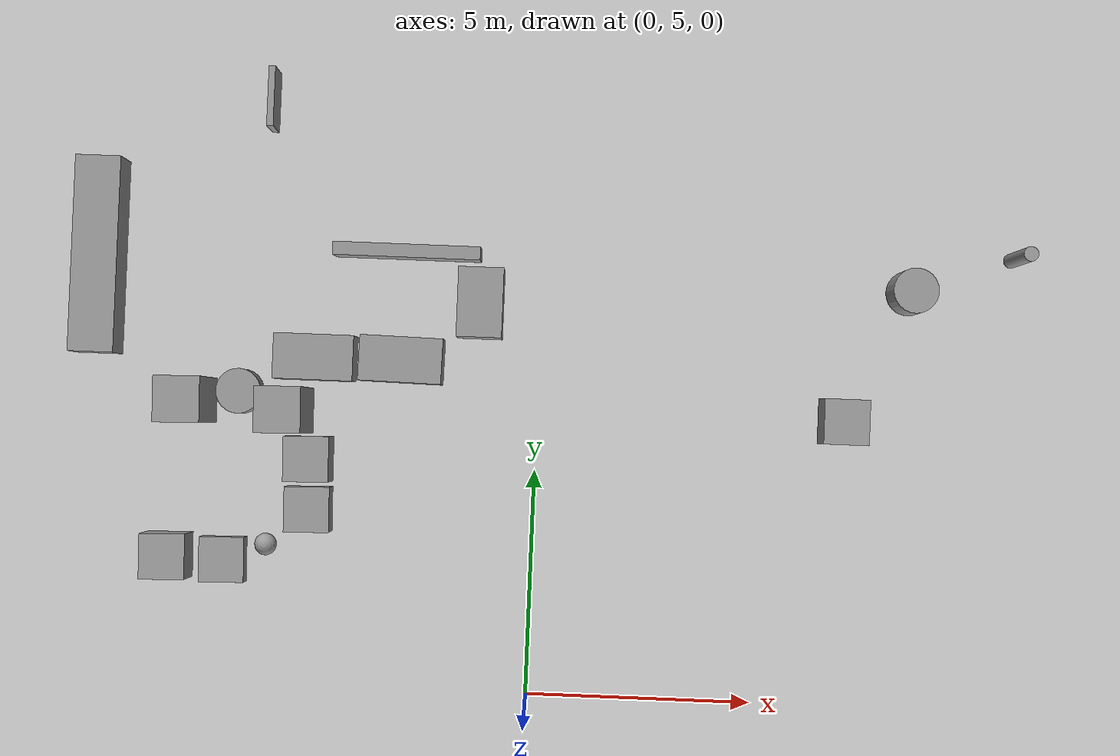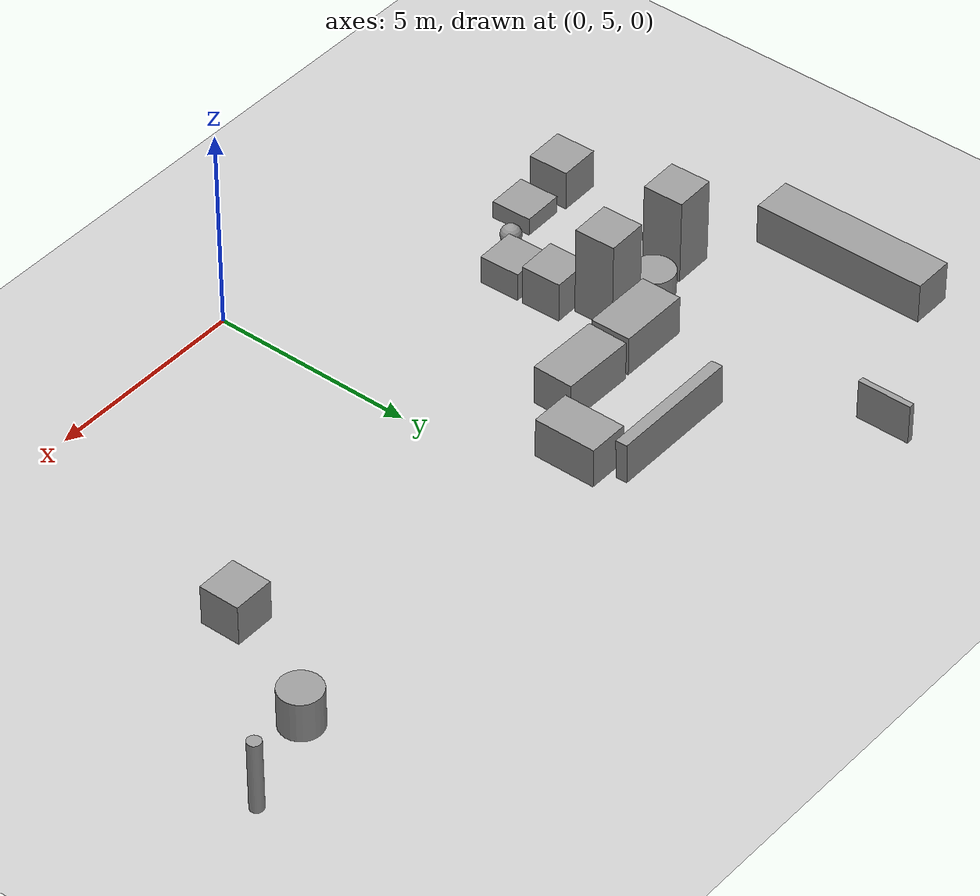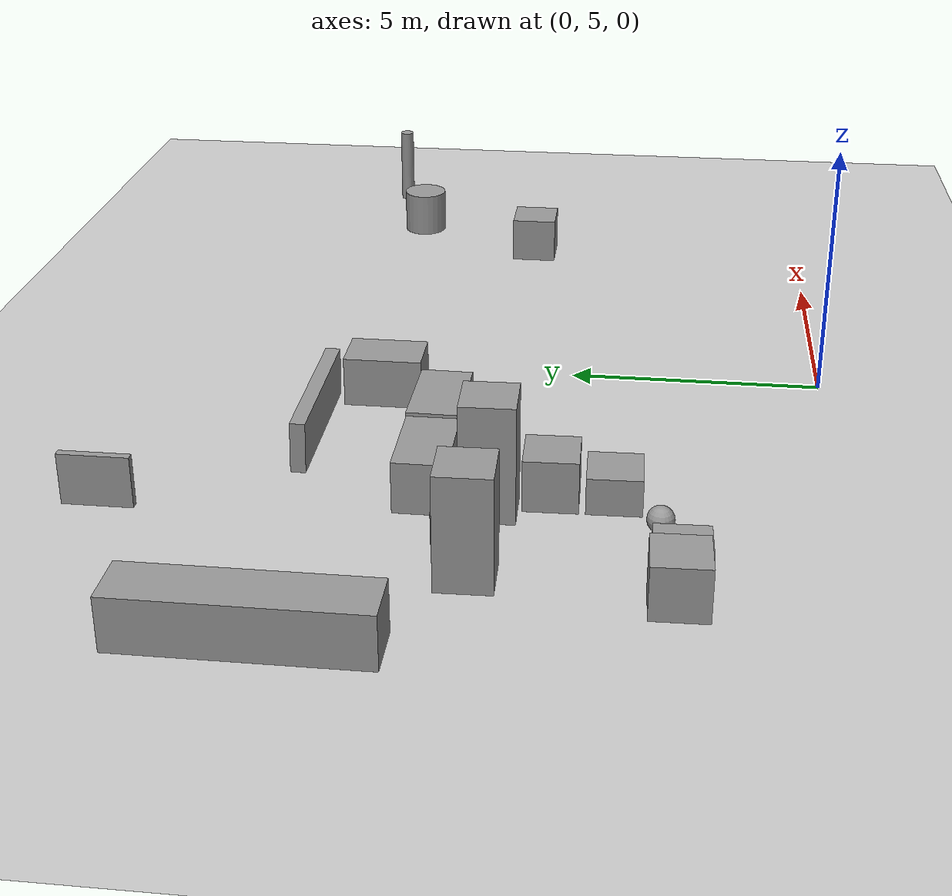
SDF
<sdf version="1.6">
 <world name="world">
  <gravity>0 0 -9.8</gravity>
  <physics name="default_physics" default="0" type="ode">
   <max_step_size>0.001</max_step_size>
   <real_time_factor>1</real_time_factor>
   <real_time_update_rate>1000</real_time_update_rate>
  </physics>
  <scene><ambient>0.6 0.6 0.6 1</ambient><background>0.4 0.4 0.4 1</background><shadows>0</shadows></scene>
  <light name="sun" type="directional">
   <pose>0 0 10 0 -0 0</pose>
   <diffuse>0.8 0.8 0.8 1</diffuse>
   <specular>0.2 0.2 0.2 1</specular>
   <attenuation>
    <range>1000</range>
    <constant>0.9</constant>
    <linear>0.01</linear>
    <quadratic>0.001</quadratic>
   </attenuation>
   <direction>-0.5 0.1 -0.9</direction>
   <spot><inner_angle>0</inner_angle><outer_angle>0</outer_angle><falloff>0</falloff></spot>
  </light>
  <model name="ground_plane">
   <static>1</static>
   <link name="link">
    <collision name="collision">
     <geometry><plane><normal>0 0 1</normal><size>100 100</size></plane></geometry>
     <surface><friction><ode><mu>100</mu><mu2>50</mu2></ode></friction></surface>
    </collision>
    <visual name="visual">
     <cast_shadows>0</cast_shadows>
     <geometry><plane><normal>0 0 1</normal><size>100 100</size></plane></geometry>
     <material>
      <script><uri>file://media/materials/scripts/gazebo.material</uri><name>Gazebo/Grey</name></script>
     </material>
    </visual>
   </link>
   <pose>0 0 -0.1 0 -0 0</pose>
  </model>
  <magnetic_field>6e-06 2.3e-05 -4.2e-05</magnetic_field>
  <atmosphere type="adiabatic"/>
  <spherical_coordinates>
   <surface_model>EARTH_WGS84</surface_model>
   <latitude_deg>0</latitude_deg>
   <longitude_deg>0</longitude_deg>
   <elevation>0</elevation>
   <heading_deg>0</heading_deg>
  </spherical_coordinates>
  <audio><device>default</device></audio>
  <model name="unit_box">
   <pose>-7.6823 11.2693 1.07009 0 -1e-06 0.02245</pose>
   <link name="link">
    <inertial>
     <mass>1</mass>
     <inertia>
      <ixx>0.166667</ixx>
      <ixy>0</ixy>
      <ixz>0</ixz>
      <iyy>0.166667</iyy>
      <iyz>0</iyz>
      <izz>0.166667</izz>
     </inertia>
    </inertial>
    <collision name="collision"><geometry><box><size>0.999998 1 2.14019</size></box></geometry></collision>
    <visual name="visual">
     <geometry><box><size>0.999998 1 2.14019</size></box></geometry>
     <material>
      <script><name>Gazebo/Grey</name><uri>file://media/materials/scripts/gazebo.material</uri></script>
     </material>
    </visual>
   </link>
  </model>
  <model name="unit_box_0">
   <pose>6.81181 11.3527 0.5 -0 -0 -0</pose>
   <link name="link">
    <inertial>
     <mass>1</mass>
     <inertia>
      <ixx>0.166667</ixx>
      <ixy>0</ixy>
      <ixz>0</ixz>
      <iyy>0.166667</iyy>
      <iyz>0</iyz>
      <izz>0.166667</izz>
     </inertia>
    </inertial>
    <collision name="collision"><geometry><box><size>1 1 1</size></box></geometry></collision>
    <visual name="visual">
     <geometry><box><size>1 1 1</size></box></geometry>
     <material>
      <script><name>Gazebo/Grey</name><uri>file://media/materials/scripts/gazebo.material</uri></script>
     </material>
    </visual>
   </link>
  </model>
  <model name="unit_cylinder_0_clone">
   <pose>8.22762 14.295 0.500002 -3e-06 3e-06 0.006321</pose>
   <link name="link">
    <inertial>
     <mass>1</mass>
     <inertia><ixx>0.145833</ixx><ixy>0</ixy><ixz>0</ixz><iyy>0.145833</iyy><iyz>0</iyz><izz>0.125</izz></inertia>
    </inertial>
    <collision name="collision">
     <geometry><cylinder><radius>0.500002</radius><length>1</length></cylinder></geometry>
    </collision>
    <visual name="visual">
     <geometry><cylinder><radius>0.500002</radius><length>1</length></cylinder></geometry>
     <material>
      <script><name>Gazebo/Grey</name><uri>file://media/materials/scripts/gazebo.material</uri></script>
     </material>
    </visual>
   </link>
  </model>
  <model name="unit_cylinder_0_clone_clone">
   <pose>10.5071 15.1176 0.909268 -8e-06 -1.6e-05 0.009049</pose>
   <link name="link">
    <inertial>
     <mass>1</mass>
     <inertia><ixx>0.145833</ixx><ixy>0</ixy><ixz>0</ixz><iyy>0.145833</iyy><iyz>0</iyz><izz>0.125</izz></inertia>
    </inertial>
    <collision name="collision">
     <geometry><cylinder><radius>0.161138</radius><length>1.81855</length></cylinder></geometry>
    </collision>
    <visual name="visual">
     <geometry><cylinder><radius>0.161138</radius><length>1.81855</length></cylinder></geometry>
     <material>
      <script><name>Gazebo/Grey</name><uri>file://media/materials/scripts/gazebo.material</uri></script>
     </material>
    </visual>
   </link>
  </model>
  <model name="unit_box_clone">
   <pose>-5.50597 11.1281 1.12514 0 -0 0.023289</pose>
   <link name="link">
    <inertial>
     <mass>1</mass>
     <inertia>
      <ixx>0.166667</ixx>
      <ixy>0</ixy>
      <ixz>0</ixz>
      <iyy>0.166667</iyy>
      <iyz>0</iyz>
      <izz>0.166667</izz>
     </inertia>
    </inertial>
    <collision name="collision"><geometry><box><size>1 1 2.25028</size></box></geometry></collision>
    <visual name="visual">
     <geometry><box><size>1 1 2.25028</size></box></geometry>
     <material>
      <script><name>Gazebo/Grey</name><uri>file://media/materials/scripts/gazebo.material</uri></script>
     </material>
    </visual>
   </link>
  </model>
  <model name="unit_box_clone_clone">
   <pose>-5.0145 10.0689 0.5 0 -0 0.023312</pose>
   <link name="link">
    <inertial>
     <mass>1</mass>
     <inertia>
      <ixx>0.166667</ixx>
      <ixy>0</ixy>
      <ixz>0</ixz>
      <iyy>0.166667</iyy>
      <iyz>0</iyz>
      <izz>0.166667</izz>
     </inertia>
    </inertial>
    <collision name="collision"><geometry><box><size>1 1 1</size></box></geometry></collision>
    <visual name="visual">
     <geometry><box><size>1 1 1</size></box></geometry>
     <material>
      <script><name>Gazebo/Grey</name><uri>file://media/materials/scripts/gazebo.material</uri></script>
     </material>
    </visual>
   </link>
  </model>
  <model name="unit_box_clone_clone_0">
   <pose>-4.9897 8.9513 0.355887 0 -0 0.023312</pose>
   <link name="link">
    <inertial>
     <mass>1</mass>
     <inertia>
      <ixx>0.166667</ixx>
      <ixy>0</ixy>
      <ixz>0</ixz>
      <iyy>0.166667</iyy>
      <iyz>0</iyz>
      <izz>0.166667</izz>
     </inertia>
    </inertial>
    <collision name="collision"><geometry><box><size>1 1 0.711775</size></box></geometry></collision>
    <visual name="visual">
     <geometry><box><size>1 1 0.711775</size></box></geometry>
     <material>
      <script><name>Gazebo/Grey</name><uri>file://media/materials/scripts/gazebo.material</uri></script>
     </material>
    </visual>
   </link>
  </model>
  <model name="unit_box_clone_clone_1">
   <pose>-6.86489 7.75891 0.222471 0 -0 0.023312</pose>
   <link name="link">
    <inertial>
     <mass>1</mass>
     <inertia>
      <ixx>0.166667</ixx>
      <ixy>0</ixy>
      <ixz>0</ixz>
      <iyy>0.166667</iyy>
      <iyz>0</iyz>
      <izz>0.166667</izz>
     </inertia>
    </inertial>
    <collision name="collision"><geometry><box><size>1 1 0.444942</size></box></geometry></collision>
    <visual name="visual">
     <geometry><box><size>1 1 0.444942</size></box></geometry>
     <material>
      <script><name>Gazebo/Grey</name><uri>file://media/materials/scripts/gazebo.material</uri></script>
     </material>
    </visual>
   </link>
  </model>
  <model name="unit_box_clone_clone_2">
   <pose>-8.07625 7.81645 0.5 0 -0 0.023312</pose>
   <link name="link">
    <inertial>
     <mass>1</mass>
     <inertia>
      <ixx>0.166667</ixx>
      <ixy>0</ixy>
      <ixz>0</ixz>
      <iyy>0.166667</iyy>
      <iyz>0</iyz>
      <izz>0.166667</izz>
     </inertia>
    </inertial>
    <collision name="collision"><geometry><box><size>1 1 1</size></box></geometry></collision>
    <visual name="visual">
     <geometry><box><size>1 1 1</size></box></geometry>
     <material>
      <script><name>Gazebo/Grey</name><uri>file://media/materials/scripts/gazebo.material</uri></script>
     </material>
    </visual>
   </link>
  </model>
  <model name="unit_box_2">
   <pose>-4.95115 12.3183 0.5 2e-06 -0 -6.7e-05</pose>
   <link name="link">
    <inertial>
     <mass>1</mass>
     <inertia>
      <ixx>0.166667</ixx>
      <ixy>0</ixy>
      <ixz>0</ixz>
      <iyy>0.166667</iyy>
      <iyz>0</iyz>
      <izz>0.166667</izz>
     </inertia>
    </inertial>
    <collision name="collision"><geometry><box><size>1.76009 1 1</size></box></geometry></collision>
    <visual name="visual">
     <geometry><box><size>1.76009 1 1</size></box></geometry>
     <material>
      <script><name>Gazebo/Grey</name><uri>file://media/materials/scripts/gazebo.material</uri></script>
     </material>
    </visual>
   </link>
  </model>
  <model name="unit_box_1">
   <pose>-2.99544 14.742 0.5037 0.026887 -0 0.000227</pose>
   <link name="link">
    <inertial>
     <mass>1</mass>
     <inertia>
      <ixx>0.166667</ixx>
      <ixy>0</ixy>
      <ixz>0</ixz>
      <iyy>0.166667</iyy>
      <iyz>0</iyz>
      <izz>0.166667</izz>
     </inertia>
    </inertial>
    <collision name="collision"><geometry><box><size>3.24916 0.288741 1</size></box></geometry></collision>
    <visual name="visual">
     <geometry><box><size>3.24916 0.288741 1</size></box></geometry>
     <material>
      <script><name>Gazebo/Grey</name><uri>file://media/materials/scripts/gazebo.material</uri></script>
     </material>
    </visual>
   </link>
  </model>
  <model name="unit_box_3">
   <pose>-3.03217 12.3371 0.5 -0 -0 -1.58771</pose>
   <link name="link">
    <inertial>
     <mass>1</mass>
     <inertia>
      <ixx>0.166667</ixx>
      <ixy>0</ixy>
      <ixz>0</ixz>
      <iyy>0.166667</iyy>
      <iyz>0</iyz>
      <izz>0.166667</izz>
     </inertia>
    </inertial>
    <collision name="collision"><geometry><box><size>1 1.8267 1</size></box></geometry></collision>
    <visual name="visual">
     <geometry><box><size>1 1.8267 1</size></box></geometry>
     <material>
      <script><name>Gazebo/Grey</name><uri>file://media/materials/scripts/gazebo.material</uri></script>
     </material>
    </visual>
   </link>
  </model>
  <model name="unit_box_4">
   <pose>-1.33494 13.664 0.5 0 0 -0.00016</pose>
   <link name="link">
    <inertial>
     <mass>1</mass>
     <inertia>
      <ixx>0.166667</ixx>
      <ixy>0</ixy>
      <ixz>0</ixz>
      <iyy>0.166667</iyy>
      <iyz>0</iyz>
      <izz>0.166667</izz>
     </inertia>
    </inertial>
    <collision name="collision"><geometry><box><size>1 1.53979 1</size></box></geometry></collision>
    <visual name="visual">
     <geometry><box><size>1 1.53979 1</size></box></geometry>
     <material>
      <script><name>Gazebo/Grey</name><uri>file://media/materials/scripts/gazebo.material</uri></script>
     </material>
    </visual>
   </link>
  </model>
  <model name="unit_box_5">
   <pose>-6.10895 18.0159 0.500276 0 -0 1.3e-05</pose>
   <link name="link">
    <inertial>
     <mass>1</mass>
     <inertia>
      <ixx>0.166667</ixx>
      <ixy>0</ixy>
      <ixz>0</ixz>
      <iyy>0.166667</iyy>
      <iyz>0</iyz>
      <izz>0.166667</izz>
     </inertia>
    </inertial>
    <collision name="collision"><geometry><box><size>0.144686 1.32203 1</size></box></geometry></collision>
    <visual name="visual">
     <geometry><box><size>0.144686 1.32203 1</size></box></geometry>
     <material>
      <script><name>Gazebo/Grey</name><uri>file://media/materials/scripts/gazebo.material</uri></script>
     </material>
    </visual>
   </link>
  </model>
  <model name="unit_box_6">
   <pose>-9.8431 14.3997 0.499998 -1e-06 5e-06 0.000881</pose>
   <link name="link">
    <inertial>
     <mass>1</mass>
     <inertia>
      <ixx>0.166667</ixx>
      <ixy>0</ixy>
      <ixz>0</ixz>
      <iyy>0.166667</iyy>
      <iyz>0</iyz>
      <izz>0.166667</izz>
     </inertia>
    </inertial>
    <collision name="collision"><geometry><box><size>1 4.31818 1</size></box></geometry></collision>
    <visual name="visual">
     <geometry><box><size>1 4.31818 1</size></box></geometry>
     <material>
      <script><name>Gazebo/Grey</name><uri>file://media/materials/scripts/gazebo.material</uri></script>
     </material>
    </visual>
   </link>
  </model>
  <model name="unit_cylinder">
   <pose>-6.62254 11.5126 0.289168 -1e-06 -0 7.3e-05</pose>
   <link name="link">
    <inertial>
     <mass>1</mass>
     <inertia><ixx>0.145833</ixx><ixy>0</ixy><ixz>0</ixz><iyy>0.145833</iyy><iyz>0</iyz><izz>0.125</izz></inertia>
    </inertial>
    <collision name="collision">
     <geometry><cylinder><radius>0.5</radius><length>0.578336</length></cylinder></geometry>
    </collision>
    <visual name="visual">
     <geometry><cylinder><radius>0.5</radius><length>0.578336</length></cylinder></geometry>
     <material>
      <script><name>Gazebo/Grey</name><uri>file://media/materials/scripts/gazebo.material</uri></script>
     </material>
    </visual>
   </link>
  </model>
  <model name="unit_sphere">
   <pose>-5.91987 8.12997 0.246551 0 -0 0</pose>
   <link name="link">
    <inertial>
     <mass>1</mass>
     <inertia><ixx>0.1</ixx><ixy>0</ixy><ixz>0</ixz><iyy>0.1</iyy><iyz>0</iyz><izz>0.1</izz></inertia>
    </inertial>
    <collision name="collision"><geometry><sphere><radius>0.246551</radius></sphere></geometry></collision>
    <visual name="visual">
     <geometry><sphere><radius>0.246551</radius></sphere></geometry>
     <material>
      <script><name>Gazebo/Grey</name><uri>file://media/materials/scripts/gazebo.material</uri></script>
     </material>
    </visual>
   </link>
  </model>
 </world>
</sdf>
